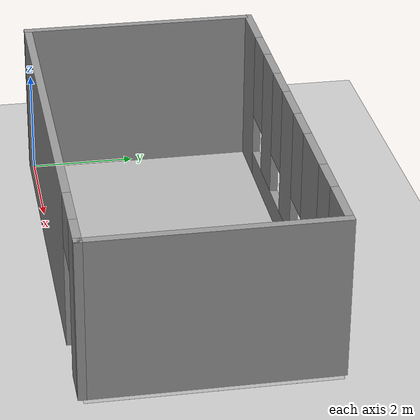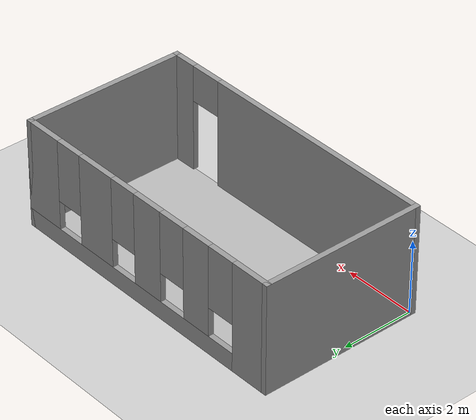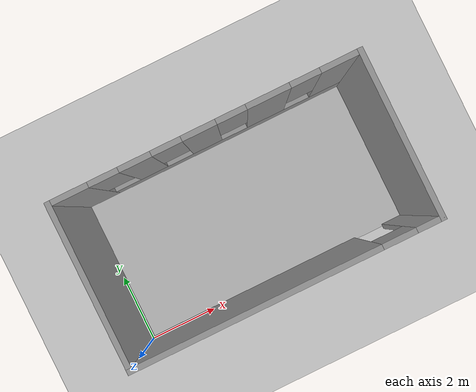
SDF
<sdf version="1.6">
 <world name="default">
  <light name="sun" type="directional">
   <pose>0 0 10 0 -0 0</pose>
   <diffuse>0.8 0.8 0.8 1</diffuse>
   <specular>0.1 0.1 0.1 1</specular>
   <attenuation>
    <range>1000</range>
    <constant>0.9</constant>
    <linear>0.01</linear>
    <quadratic>0.001</quadratic>
   </attenuation>
   <direction>-0.5 0.5 -1</direction>
  </light>
  <model name="ground_plane">
   <static>1</static>
   <link name="link">
    <collision name="collision">
     <geometry><plane><normal>0 0 1</normal><size>100 100</size></plane></geometry>
     <surface><friction><ode><mu>100</mu><mu2>50</mu2></ode></friction></surface>
    </collision>
    <visual name="visual">
     <cast_shadows>0</cast_shadows>
     <geometry><plane><normal>0 0 1</normal><size>100 100</size></plane></geometry>
     <material>
      <script><uri>file://media/materials/scripts/gazebo.material</uri><name>Gazebo/Grey</name></script>
     </material>
    </visual>
   </link>
  </model>
  <gravity>0 0 -9.8</gravity>
  <magnetic_field>6e-06 2.3e-05 -4.2e-05</magnetic_field>
  <atmosphere type="adiabatic"/>
  <physics name="default_physics" default="0" type="ode">
   <max_step_size>0.001</max_step_size>
   <real_time_factor>1</real_time_factor>
   <real_time_update_rate>1000</real_time_update_rate>
  </physics>
  <scene><ambient>0.4 0.4 0.4 1</ambient><background>0.7 0.7 0.7 1</background><shadows>1</shadows></scene>
  <spherical_coordinates>
   <surface_model>EARTH_WGS84</surface_model>
   <latitude_deg>0</latitude_deg>
   <longitude_deg>0</longitude_deg>
   <elevation>0</elevation>
   <heading_deg>0</heading_deg>
  </spherical_coordinates>
  <model name="Tr11Lab">
   <pose>4.10336 2.18709 0 0 -0 0</pose>
   <link name="Wall_10">
    <collision name="Wall_10_Collision">
     <geometry><box><size>4.55 0.15 3</size></box></geometry>
     <pose>0 0 1.5 0 -0 0</pose>
    </collision>
    <visual name="Wall_10_Visual">
     <pose>0 0 1.5 0 -0 0</pose>
     <geometry><box><size>4.55 0.15 3</size></box></geometry>
     <material>
      <script><uri>file://media/materials/scripts/gazebo.material</uri><name>Gazebo/Grey</name></script>
      <ambient>1 1 1 1</ambient>
     </material>
    </visual>
    <pose>4.125 0 0 0 0 -1.5708</pose>
   </link>
   <link name="Wall_6">
    <pose>0 -2.2 0 0 -0 0</pose>
    <visual name="Wall_6_Visual_0">
     <pose>-0.829278 0 1.5 0 -0 0</pose>
     <geometry><box><size>6.74144 0.15 3</size></box></geometry>
     <material>
      <script><uri>file://media/materials/scripts/gazebo.material</uri><name>Gazebo/Grey</name></script>
      <ambient>1 1 1 1</ambient>
     </material>
    </visual>
    <collision name="Wall_6_Collision_0">
     <geometry><box><size>6.74144 0.15 3</size></box></geometry>
     <pose>-0.829278 0 1.5 0 -0 0</pose>
    </collision>
    <visual name="Wall_6_Visual_1">
     <pose>3.82072 0 1.5 0 -0 0</pose>
     <geometry><box><size>0.758557 0.15 3</size></box></geometry>
     <material>
      <script><uri>file://media/materials/scripts/gazebo.material</uri><name>Gazebo/Grey</name></script>
      <ambient>1 1 1 1</ambient>
     </material>
    </visual>
    <collision name="Wall_6_Collision_1">
     <geometry><box><size>0.758557 0.15 3</size></box></geometry>
     <pose>3.82072 0 1.5 0 -0 0</pose>
    </collision>
    <visual name="Wall_6_Visual_2">
     <pose>2.99144 0 2.5 0 -0 0</pose>
     <geometry><box><size>0.9 0.15 1</size></box></geometry>
     <material>
      <script><uri>file://media/materials/scripts/gazebo.material</uri><name>Gazebo/Grey</name></script>
      <ambient>1 1 1 1</ambient>
     </material>
    </visual>
    <collision name="Wall_6_Collision_2">
     <geometry><box><size>0.9 0.15 1</size></box></geometry>
     <pose>2.99144 0 2.5 0 -0 0</pose>
    </collision>
   </link>
   <link name="Wall_8">
    <collision name="Wall_8_Collision">
     <geometry><box><size>4.55003 0.15 3</size></box></geometry>
     <pose>0 0 1.5 0 -0 0</pose>
    </collision>
    <visual name="Wall_8_Visual">
     <pose>0 0 1.5 0 -0 0</pose>
     <geometry><box><size>4.55003 0.15 3</size></box></geometry>
     <material>
      <script><uri>file://media/materials/scripts/gazebo.material</uri><name>Gazebo/Grey</name></script>
      <ambient>1 1 1 1</ambient>
     </material>
    </visual>
    <pose>-4.125 0 0 0 -0 1.5708</pose>
   </link>
   <link name="Wall_9">
    <pose>0 2.2 0 0 -0 0</pose>
    <visual name="Wall_9_Visual_0">
     <pose>-3.63767 0 1.5 0 -0 0</pose>
     <geometry><box><size>1.12466 0.15 3</size></box></geometry>
     <material>
      <script><uri>file://media/materials/scripts/gazebo.material</uri><name>Gazebo/Grey</name></script>
      <ambient>1 1 1 1</ambient>
     </material>
    </visual>
    <collision name="Wall_9_Collision_0">
     <geometry><box><size>1.12466 0.15 3</size></box></geometry>
     <pose>-3.63767 0 1.5 0 -0 0</pose>
    </collision>
    <visual name="Wall_9_Visual_1">
     <pose>0.562332 0 0.25 0 -0 0</pose>
     <geometry><box><size>7.27534 0.15 0.5</size></box></geometry>
     <material>
      <script><uri>file://media/materials/scripts/gazebo.material</uri><name>Gazebo/Grey</name></script>
      <ambient>1 1 1 1</ambient>
     </material>
    </visual>
    <collision name="Wall_9_Collision_1">
     <geometry><box><size>7.27534 0.15 0.5</size></box></geometry>
     <pose>0.562332 0 0.25 0 -0 0</pose>
    </collision>
    <visual name="Wall_9_Visual_2">
     <pose>-1.84456 0 1.75 0 -0 0</pose>
     <geometry><box><size>0.861556 0.15 2.5</size></box></geometry>
     <material>
      <script><uri>file://media/materials/scripts/gazebo.material</uri><name>Gazebo/Grey</name></script>
      <ambient>1 1 1 1</ambient>
     </material>
    </visual>
    <collision name="Wall_9_Collision_2">
     <geometry><box><size>0.861556 0.15 2.5</size></box></geometry>
     <pose>-1.84456 0 1.75 0 -0 0</pose>
    </collision>
    <visual name="Wall_9_Visual_3">
     <pose>-0.156768 0 1.75 0 -0 0</pose>
     <geometry><box><size>0.914026 0.15 2.5</size></box></geometry>
     <material>
      <script><uri>file://media/materials/scripts/gazebo.material</uri><name>Gazebo/Grey</name></script>
      <ambient>1 1 1 1</ambient>
     </material>
    </visual>
    <collision name="Wall_9_Collision_3">
     <geometry><box><size>0.914026 0.15 2.5</size></box></geometry>
     <pose>-0.156768 0 1.75 0 -0 0</pose>
    </collision>
    <visual name="Wall_9_Visual_4">
     <pose>1.67969 0 1.75 0 -0 0</pose>
     <geometry><box><size>1.15889 0.15 2.5</size></box></geometry>
     <material>
      <script><uri>file://media/materials/scripts/gazebo.material</uri><name>Gazebo/Grey</name></script>
      <ambient>1 1 1 1</ambient>
     </material>
    </visual>
    <collision name="Wall_9_Collision_4">
     <geometry><box><size>1.15889 0.15 2.5</size></box></geometry>
     <pose>1.67969 0 1.75 0 -0 0</pose>
    </collision>
    <visual name="Wall_9_Visual_5">
     <pose>3.62957 0 1.75 0 -0 0</pose>
     <geometry><box><size>1.14087 0.15 2.5</size></box></geometry>
     <material>
      <script><uri>file://media/materials/scripts/gazebo.material</uri><name>Gazebo/Grey</name></script>
      <ambient>1 1 1 1</ambient>
     </material>
    </visual>
    <collision name="Wall_9_Collision_5">
     <geometry><box><size>1.14087 0.15 2.5</size></box></geometry>
     <pose>3.62957 0 1.75 0 -0 0</pose>
    </collision>
    <visual name="Wall_9_Visual_6">
     <pose>-2.67534 0 2.15 0 -0 0</pose>
     <geometry><box><size>0.8 0.15 1.7</size></box></geometry>
     <material>
      <script><uri>file://media/materials/scripts/gazebo.material</uri><name>Gazebo/Grey</name></script>
      <ambient>1 1 1 1</ambient>
     </material>
    </visual>
    <collision name="Wall_9_Collision_6">
     <geometry><box><size>0.8 0.15 1.7</size></box></geometry>
     <pose>-2.67534 0 2.15 0 -0 0</pose>
    </collision>
    <visual name="Wall_9_Visual_7">
     <pose>-1.01378 0 2.15 0 -0 0</pose>
     <geometry><box><size>0.8 0.15 1.7</size></box></geometry>
     <material>
      <script><uri>file://media/materials/scripts/gazebo.material</uri><name>Gazebo/Grey</name></script>
      <ambient>1 1 1 1</ambient>
     </material>
    </visual>
    <collision name="Wall_9_Collision_7">
     <geometry><box><size>0.8 0.15 1.7</size></box></geometry>
     <pose>-1.01378 0 2.15 0 -0 0</pose>
    </collision>
    <visual name="Wall_9_Visual_8">
     <pose>0.700245 0 2.15 0 -0 0</pose>
     <geometry><box><size>0.8 0.15 1.7</size></box></geometry>
     <material>
      <script><uri>file://media/materials/scripts/gazebo.material</uri><name>Gazebo/Grey</name></script>
      <ambient>1 1 1 1</ambient>
     </material>
    </visual>
    <collision name="Wall_9_Collision_8">
     <geometry><box><size>0.8 0.15 1.7</size></box></geometry>
     <pose>0.700245 0 2.15 0 -0 0</pose>
    </collision>
    <visual name="Wall_9_Visual_9">
     <pose>2.65913 0 2.15 0 -0 0</pose>
     <geometry><box><size>0.8 0.15 1.7</size></box></geometry>
     <material>
      <script><uri>file://media/materials/scripts/gazebo.material</uri><name>Gazebo/Grey</name></script>
      <ambient>1 1 1 1</ambient>
     </material>
    </visual>
    <collision name="Wall_9_Collision_9">
     <geometry><box><size>0.8 0.15 1.7</size></box></geometry>
     <pose>2.65913 0 2.15 0 -0 0</pose>
    </collision>
   </link>
   <static>1</static>
  </model>
  <model name="lab_floor">
   <static>1</static>
   <link name="link_lab_floor">
    <gravity>0</gravity>
    <visual name="visual_lab_floor">
     <geometry><box><size>4.4 8.4 0.001</size></box></geometry>
     <material>
      <script>
       <uri>model://lab_floor/material/scripts</uri>
       <uri>model://lab_floor/material/textures</uri>
       <name>lab_floor</name>
      </script>
     </material>
    </visual>
    <collision name="collision"><geometry><box><size>4.4 8.4 0.001</size></box></geometry></collision>
   </link>
   <pose>4.2 2.2 0 0 -0 1.5707</pose>
  </model>
 </world>
</sdf>
